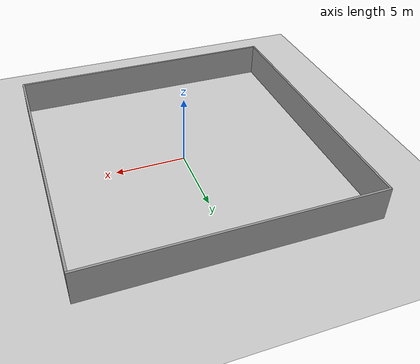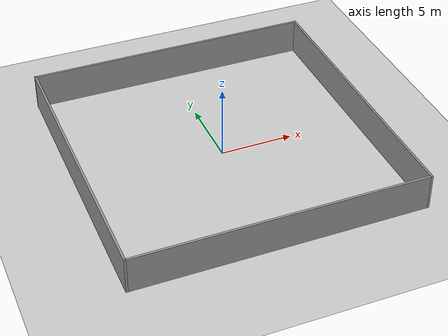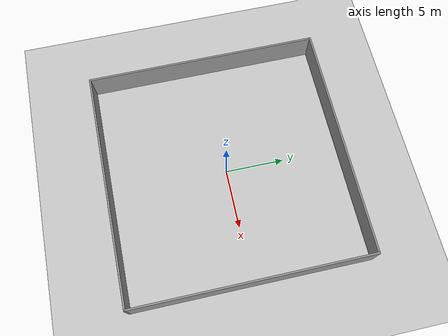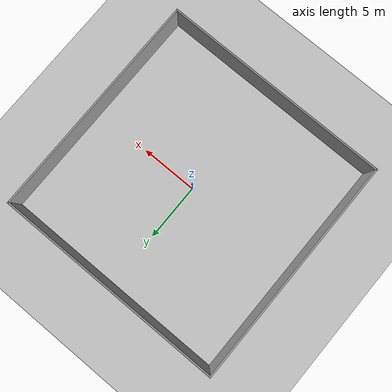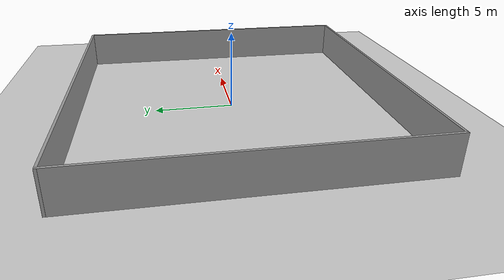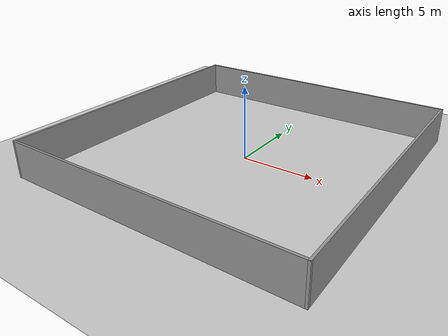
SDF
<sdf version="1.7">
 <world name="default">
  <light name="sun" type="directional">
   <pose>0 0 10 0 -0 0</pose>
   <diffuse>0.8 0.8 0.8 1</diffuse>
   <specular>0.2 0.2 0.2 1</specular>
   <attenuation>
    <range>1000</range>
    <constant>0.9</constant>
    <linear>0.01</linear>
    <quadratic>0.001</quadratic>
   </attenuation>
   <direction>-0.5 0.1 -0.9</direction>
   <spot><inner_angle>0</inner_angle><outer_angle>0</outer_angle><falloff>0</falloff></spot>
  </light>
  <model name="ground_plane">
   <static>1</static>
   <link name="link">
    <collision name="collision">
     <geometry><plane><normal>0 0 1</normal><size>100 100</size></plane></geometry>
     <surface>
      <contact><collide_bitmask>65535</collide_bitmask></contact>
      <friction><ode><mu>100</mu><mu2>50</mu2></ode></friction>
     </surface>
    </collision>
    <visual name="visual">
     <cast_shadows>0</cast_shadows>
     <geometry><plane><normal>0 0 1</normal><size>100 100</size></plane></geometry>
     <material>
      <script><uri>file://media/materials/scripts/gazebo.material</uri><name>Gazebo/Grey</name></script>
     </material>
    </visual>
   </link>
  </model>
  <gravity>0 0 -9.8</gravity>
  <magnetic_field>6e-06 2.3e-05 -4.2e-05</magnetic_field>
  <atmosphere type="adiabatic"/>
  <physics type="ode">
   <max_step_size>0.001</max_step_size>
   <real_time_factor>1</real_time_factor>
   <real_time_update_rate>1000</real_time_update_rate>
  </physics>
  <scene><ambient>0.4 0.4 0.4 1</ambient><background>0.7 0.7 0.7 1</background><shadows>1</shadows></scene>
  <spherical_coordinates>
   <surface_model>EARTH_WGS84</surface_model>
   <latitude_deg>0</latitude_deg>
   <longitude_deg>0</longitude_deg>
   <elevation>0</elevation>
   <heading_deg>0</heading_deg>
  </spherical_coordinates>
  <model name="Wall">
   <pose>-0.047449 3.63741 0 0 -0 0</pose>
   <link name="Wall_46">
    <collision name="Wall_46_Collision">
     <geometry><box><size>20 0.15 2.5</size></box></geometry>
     <pose>0 0 1.25 0 -0 0</pose>
    </collision>
    <visual name="Wall_46_Visual">
     <pose>0 0 1.25 0 -0 0</pose>
     <geometry><box><size>20 0.15 2.5</size></box></geometry>
     <material>
      <script><uri>file://media/materials/scripts/gazebo.material</uri><name>Gazebo/Grey</name></script>
      <ambient>1 1 1 1</ambient>
     </material>
     <meta><layer>0</layer></meta>
    </visual>
    <pose>-9.925 -3.67114 0 0 -0 -1.5708</pose>
   </link>
   <link name="Wall_48">
    <collision name="Wall_48_Collision">
     <geometry><box><size>20 0.15 2.5</size></box></geometry>
     <pose>0 0 1.25 0 -0 0</pose>
    </collision>
    <visual name="Wall_48_Visual">
     <pose>0 0 1.25 0 -0 0</pose>
     <geometry><box><size>20 0.15 2.5</size></box></geometry>
     <material>
      <script><uri>file://media/materials/scripts/gazebo.material</uri><name>Gazebo/Grey</name></script>
      <ambient>1 1 1 1</ambient>
     </material>
     <meta><layer>0</layer></meta>
    </visual>
    <pose>-0 6.25387 0 0 -0 0</pose>
   </link>
   <link name="Wall_50">
    <collision name="Wall_50_Collision">
     <geometry><box><size>20 0.15 2.5</size></box></geometry>
     <pose>0 0 1.25 0 -0 0</pose>
    </collision>
    <visual name="Wall_50_Visual">
     <pose>0 0 1.25 0 -0 0</pose>
     <geometry><box><size>20 0.15 2.5</size></box></geometry>
     <material>
      <script><uri>file://media/materials/scripts/gazebo.material</uri><name>Gazebo/Grey</name></script>
      <ambient>1 1 1 1</ambient>
     </material>
     <meta><layer>0</layer></meta>
    </visual>
    <pose>9.925 -3.67114 0 0 -0 -1.5708</pose>
   </link>
   <link name="Wall_52">
    <collision name="Wall_52_Collision">
     <geometry><box><size>20 0.15 2.5</size></box></geometry>
     <pose>0 0 1.25 0 -0 0</pose>
    </collision>
    <visual name="Wall_52_Visual">
     <pose>0 0 1.25 0 -0 0</pose>
     <geometry><box><size>20 0.15 2.5</size></box></geometry>
     <material>
      <script><uri>file://media/materials/scripts/gazebo.material</uri><name>Gazebo/Grey</name></script>
      <ambient>1 1 1 1</ambient>
     </material>
     <meta><layer>0</layer></meta>
    </visual>
    <pose>-0 -13.5961 0 0 -0 0</pose>
   </link>
   <static>1</static>
  </model>
 </world>
</sdf>
